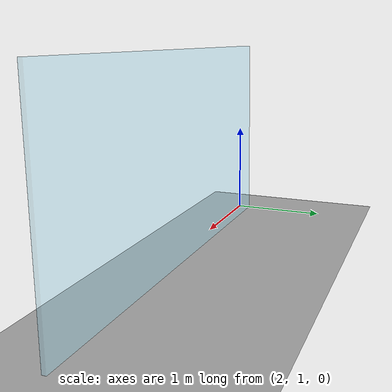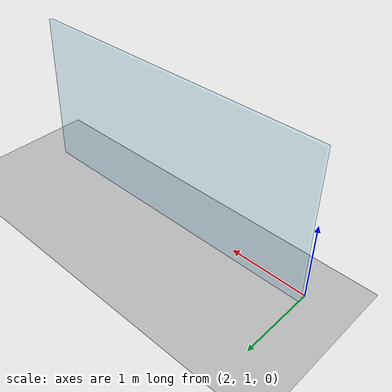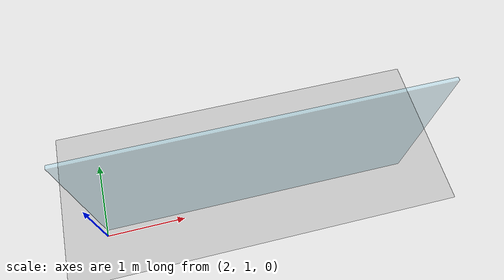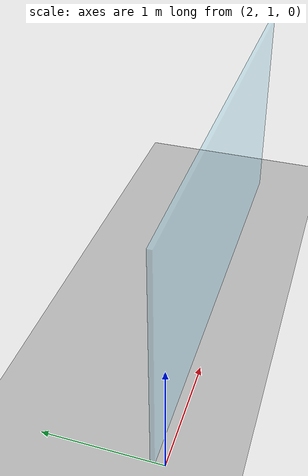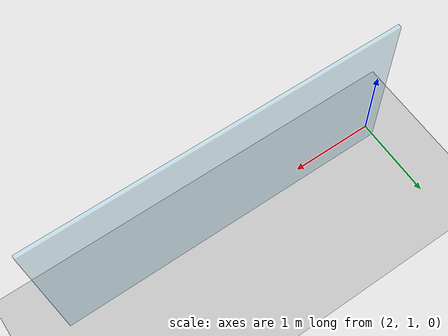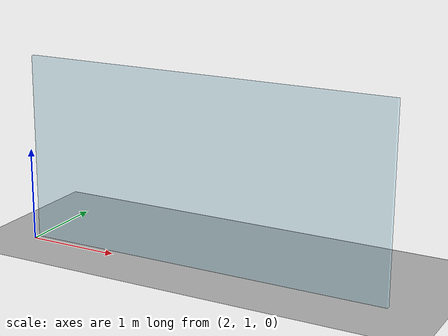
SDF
<?xml version="1.0"?>
<sdf version="1.9"><world name="glass_wall_zone"><plugin filename="gz-sim-physics-system" name="gz::sim::systems::Physics"/><plugin filename="gz-sim-scene-broadcaster-system" name="gz::sim::systems::SceneBroadcaster"/><include><uri>model://sun</uri></include><include><uri>model://ground_plane</uri></include><model name="reflective_glass_wall"><static>true</static><pose>4 1.1 1 0 0 0</pose><link name="link"><collision name="c"><geometry><box><size>4 0.08 2</size></box></geometry></collision><visual name="v"><geometry><box><size>4 0.04 2</size></box></geometry><material><ambient>0.6 0.9 1.0 0.35</ambient><diffuse>0.6 0.9 1.0 0.35</diffuse></material></visual></link></model></world></sdf>
